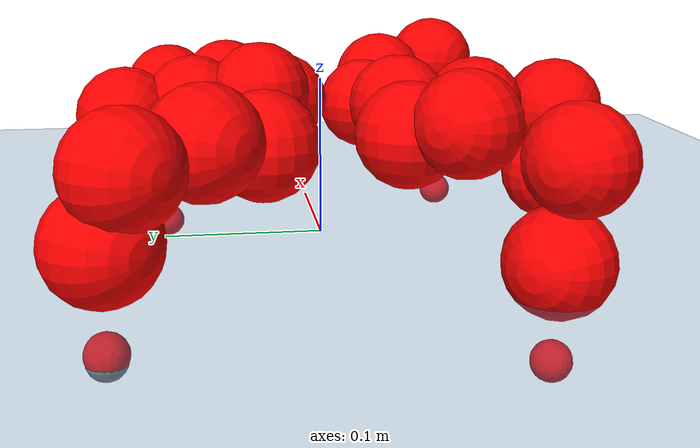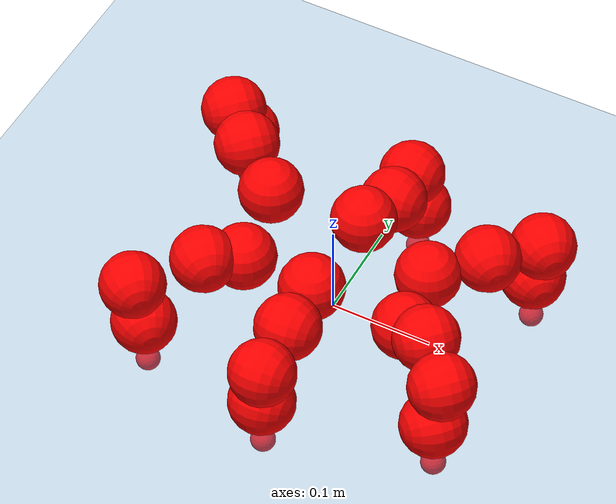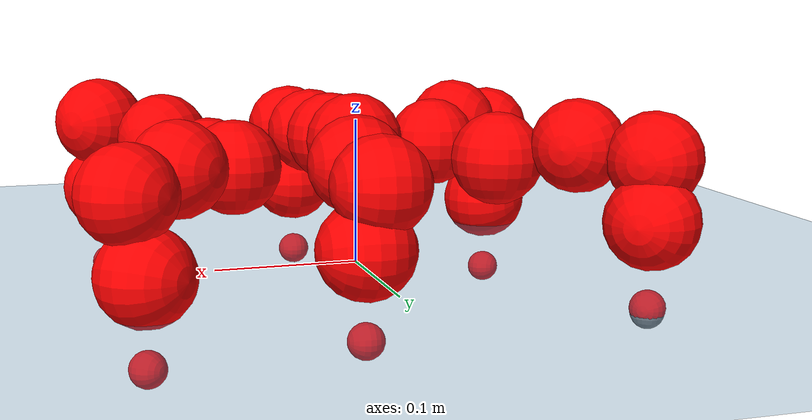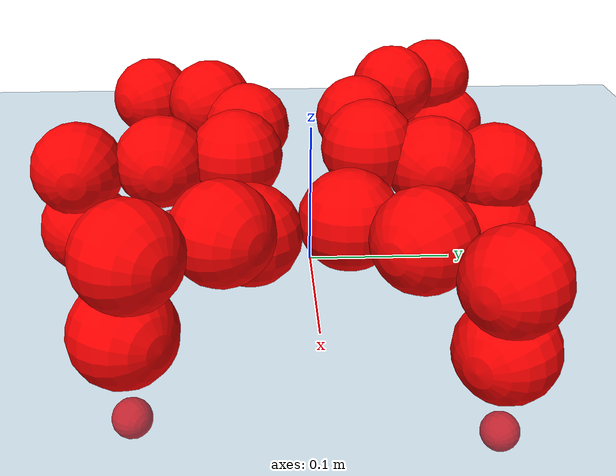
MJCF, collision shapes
<mujoco model="Golem">
  <compiler angle="radian" assetdir="assets" balanceinertia="true" inertiafromgeom="false"/>

  <option timestep="0.005" density="1.2" viscosity="2e-05"/>

  <size nkey="1"/>

  <visual>
    <quality shadowsize="8192"/>
    <map shadowclip="0.5"/>
  </visual>

  <default>
    <default class="/">
      <joint armature="0.01" damping="0.01" frictionloss="0.01"/>
      <geom contype="0" conaffinity="0" group="1" solref="-1000 -80"/>
      <site size="0.01 0.005 0.005" group="5"/>
      <general forcelimited="true" biastype="affine" gainprm="25" biasprm="0 -25 -0.5"/>
      <default class="visual">
        <geom type="mesh" group="2"/>
      </default>
      <default class="collision">
        <geom group="3"/>
      </default>
      <default class="foot">
        <geom size="0.01 0 0" condim="6" group="4" priority="1" solimp="0.015 1 0.01"/>
      </default>
      <default class="reward_collision_sphere">
        <geom group="5" rgba="1 0 0 1"/>
      </default>
    </default>
  </default>

  <asset>
    <texture type="skybox" colorspace="auto" name="//unnamed_texture_0" builtin="gradient" rgb1="0.95 0.95 0.95" rgb2="0.95 0.95 0.95" width="100" height="600"/>
    <texture type="2d" colorspace="auto" name="texplane" builtin="checker" rgb1="0.345 0.575 0.748" rgb2="0.345 0.575 0.748" markrgb="1 1 1" width="512" height="512"/>
    <material name="MatPlane" class="/" texture="texplane" texuniform="true" texrepeat="2 2" specular="0.9"/>
    <mesh name="body" class="/" file="body.stl" scale="0.001 0.001 0.001"/>
    <mesh name="coxa" class="/" file="coxa.stl" scale="0.001 0.001 0.001"/>
    <mesh name="femur" class="/" file="femur.stl" scale="0.001 0.001 0.001"/>
    <mesh name="tibia" class="/" file="tibia.stl" scale="0.001 0.001 0.001"/>
    <mesh name="tarsus" class="/" file="tarsus.stl" scale="0.001 0.001 0.001"/>
  </asset>

  <worldbody>
    <geom name="floor" class="/" size="100 100 0.125" type="plane" group="0" material="MatPlane"/>
    <light name="toplight_shadow" class="/" pos="0 0 5" dir="0.0990148 0.0990148 -0.990148" type="directional" ambient="0.04 0.04 0.04" diffuse="0.55 0.55 0.55" specular="0.12 0.12 0.12"/>
    <light name="toplight_fill" class="/" pos="0 0 5" dir="0.0990148 0.0990148 -0.990148" type="directional" castshadow="false" ambient="0.04 0.04 0.04" diffuse="0.3 0.3 0.3" specular="0.08 0.08 0.08"/>
    <body name="trunk" pos="0.00127167 -0.00127621 -0.00389268" quat="0.999973 0.00674126 -0.00144905 0.0026467">
      <inertial pos="-0.00468918 -0.00108569 -0.00525786" quat="0.999993 0.00103529 -0.000405253 -0.00358535" mass="1.48395" diaginertia="0.000378323 0.000453217 0.0367147"/>
      <joint name="//unnamed_joint_0" type="free"/>
      <geom name="//unnamed_geom_1" class="/" pos="0 0 0.084113" quat="1 0 0 0" type="mesh" rgba="0.9 0.9 0.9 1" mesh="body"/>
      <site name="imu" class="/" pos="-0.00110345 0.0423871 0.136382" size="0.00789111"/>
      <camera name="track" class="/" pos="0 -1.0552 0" quat="0.707107 0.707107 0 0" mode="trackcom"/>
      <camera name="ego_camera" class="/" pos="0.0683106 0 0.131427" quat="-0.5 -0.5 0.5 0.5"/>
      <body name="coxa_RR" pos="-0.0829505 -0.0518332 0.0809857" quat="0.387853 0.00172034 0.00434437 -0.921709">
        <inertial pos="0.00147491 -0.00141635 -0.0108199" quat="0.998906 0.00683136 0.0446717 0.0119858" mass="0.0880004" diaginertia="0.000338664 0.000353587 0.033627"/>
        <joint name="coxa_joint_RR" class="/" pos="0 0 0" axis="0.0021776 -0.008451 -0.999962" range="-2.91787 3.40084" armature="0.00808199" damping="0" frictionloss="0.00448421"/>
        <geom name="//unnamed_geom_2" class="/" type="mesh" rgba="0.2 0.2 0.2 1" mesh="coxa"/>
        <geom name="//unnamed_geom_3" class="reward_collision_sphere" size="0.0315644" pos="-0.015764 0 0"/>
        <body name="femur_RR" pos="0.0226409 0.000382926 0.0111678" quat="0.500993 -0.49979 0.500131 0.499084">
          <inertial pos="0.00171183 -0.000899863 0.00351983" quat="0.999992 0.00406984 -0.000574463 8.02469e-05" mass="0.0994418" diaginertia="0.000370329 0.000374537 0.0422965"/>
          <joint name="femur_joint_RR" class="/" pos="0 0 0" axis="0.0173021 -0.031341 -0.999359" range="-3.39956 3.13656" armature="0.0125579" damping="0.042955" frictionloss="0.00982845"/>
          <geom name="//unnamed_geom_4" class="/" type="mesh" rgba="0.9 0.9 0.9 1" mesh="femur"/>
          <geom name="//unnamed_geom_5" class="reward_collision_sphere" size="0.0315644"/>
          <body name="tibia_RR" pos="0.0105264 -0.0679702 0.000214894" quat="0.00226245 0.999987 0.00458968 0.00044454">
            <inertial pos="-0.0115244 -0.00824836 -0.00142505" quat="0.999989 0.00116514 -0.00304466 -0.00345713" mass="0.0841142" diaginertia="0.000425724 0.00040167 0.0449541"/>
            <joint name="tibia_joint_RR" class="/" pos="0 0 0" axis="0.00710849 0.066524 0.99776" range="-3.40836 3.13314" armature="0.0118813" damping="0.0512225" frictionloss="0.0088675"/>
            <geom name="//unnamed_geom_6" class="/" type="mesh" rgba="0.2 0.2 0.2 1" mesh="tibia"/>
            <geom name="//unnamed_geom_7" class="reward_collision_sphere" size="0.0315644"/>
            <body name="tarsus_RR" pos="0.0571189 -0.0069801 0.00152736" quat="0.999996 0.000845818 -0.00250839 -0.00119899">
              <inertial pos="0.0321522 0.00261254 -0.00176801" quat="0.500299 0.500853 0.499025 0.499821" mass="0.0893788" diaginertia="0.00032674 0.000405951 0.0313423"/>
              <joint name="tarsus_joint_RR" class="/" pos="0 0 0" axis="0.049372 -0.0309314 0.998301" range="-2.99629 3.18639" armature="0.00910683" damping="0" frictionloss="0.00673377"/>
              <geom name="//unnamed_geom_8" class="/" type="mesh" rgba="0.9 0.9 0.9 1" mesh="tarsus"/>
              <geom name="foot_1" class="foot" size="0.00633351" pos="0.0588522 0 0" quat="0 -0.707107 0 0.707107"/>
              <geom name="//unnamed_geom_10" class="reward_collision_sphere" size="0.0315644"/>
              <geom name="//unnamed_geom_11" class="reward_collision_sphere" size="0.0118367" pos="0.0564876 0 0"/>
              <site name="foot_1" class="foot" pos="0.0588522 0 0" quat="0 -0.707107 0 0.707107" size="0.00789111"/>
            </body>
          </body>
        </body>
      </body>
      <body name="coxa_RM" pos="0.00358748 -0.0643064 0.0868553" quat="0.71069 -0.00386448 0.00143999 -0.703493">
        <inertial pos="-0.00712299 0.0122976 -0.0052657" quat="0.999989 0.00246094 0.00312379 0.0025862" mass="0.119715" diaginertia="0.000494949 0.000432912 0.0412277"/>
        <joint name="coxa_joint_RM" class="/" pos="0 0 0" axis="-0.0508154 -0.0332488 -0.998154" stiffness="0.00670152" range="-3.16211 2.90824" armature="0.00278993" damping="0.0260905" frictionloss="0.0118683"/>
        <geom name="//unnamed_geom_12" class="/" type="mesh" rgba="0.2 0.2 0.2 1" mesh="coxa"/>
        <geom name="//unnamed_geom_13" class="reward_collision_sphere" size="0.0315644" pos="-0.015764 0 0"/>
        <body name="femur_RM" pos="0.0351012 0.00189568 -0.00170033" quat="0.499813 -0.499947 0.500038 0.500202">
          <inertial pos="-0.00916837 -0.00416408 -0.00166941" quat="0.999814 0.00022199 -0.0190835 0.00269398" mass="0.0781522" diaginertia="0.000408334 0.000384243 0.0369039"/>
          <joint name="femur_joint_RM" class="/" pos="0 0 0" axis="0.0122691 0.0241374 -0.999633" stiffness="0.00252704" range="-2.98973 3.13629" armature="0.00877385" damping="0" frictionloss="0.00409324"/>
          <geom name="//unnamed_geom_14" class="/" type="mesh" rgba="0.9 0.9 0.9 1" mesh="femur"/>
          <geom name="//unnamed_geom_15" class="reward_collision_sphere" size="0.0315644"/>
          <body name="tibia_RM" pos="0.0020736 -0.0554709 0.00297751" quat="-0.000419164 1 -0.000805491 -0.000350225">
            <inertial pos="-0.00606522 0.00161726 0.0124935" quat="0.998223 -0.0351 -0.0021393 0.0481134" mass="0.0991824" diaginertia="0.000337323 0.000407752 0.0336213"/>
            <joint name="tibia_joint_RM" class="/" pos="0 0 0" axis="0.000428323 -0.0079313 0.999968" range="-3.20019 3.26948" armature="0.00340588" damping="0" frictionloss="0.00224686"/>
            <geom name="//unnamed_geom_16" class="/" type="mesh" rgba="0.2 0.2 0.2 1" mesh="tibia"/>
            <geom name="//unnamed_geom_17" class="reward_collision_sphere" size="0.0315644"/>
            <body name="tarsus_RM" pos="0.0442738 -0.00161692 0.00216477" quat="1 0.000203026 -8.70919e-05 -0.000378592">
              <inertial pos="0.0217057 0.00158301 0.00213501" quat="0.536122 0.505627 0.473259 0.482638" mass="0.094756" diaginertia="0.000365496 0.000377119 0.0439989"/>
              <joint name="tarsus_joint_RM" class="/" pos="0 0 0" axis="-0.000685745 0.000844238 0.999999" range="-3.40935 2.98883" armature="0.00229766" damping="0.00142014" frictionloss="0.00775152"/>
              <geom name="//unnamed_geom_18" class="/" type="mesh" rgba="0.9 0.9 0.9 1" mesh="tarsus"/>
              <geom name="foot_2" class="foot" size="0.00401015" pos="0.0588522 0 0" quat="0 -0.707107 0 0.707107"/>
              <geom name="//unnamed_geom_20" class="reward_collision_sphere" size="0.0315644"/>
              <geom name="//unnamed_geom_21" class="reward_collision_sphere" size="0.0118367" pos="0.0564876 0 0"/>
              <site name="foot_2" class="foot" pos="0.0588522 0 0" quat="0 -0.707107 0 0.707107" size="0.00789111"/>
            </body>
          </body>
        </body>
      </body>
      <body name="coxa_RF" pos="0.105598 -0.0516219 0.0723415" quat="0.923878 -0.000212348 2.00288e-05 -0.382687">
        <inertial pos="0.0104478 0.0150083 -0.00926943" quat="0.998726 0.006719 -0.0238613 -0.0439438" mass="0.105726" diaginertia="0.000356091 0.000398314 0.0396206"/>
        <joint name="coxa_joint_RF" class="/" pos="0 0 0" axis="0.0057677 -0.00731916 -0.999957" stiffness="0.00170732" range="-3.0073 2.87604" armature="0.0113524" damping="0" frictionloss="0.00864435"/>
        <geom name="//unnamed_geom_22" class="/" type="mesh" rgba="0.2 0.2 0.2 1" mesh="coxa"/>
        <geom name="//unnamed_geom_23" class="reward_collision_sphere" size="0.0315644" pos="-0.015764 0 0"/>
        <body name="femur_RF" pos="0.0164686 0.00912906 0.0158962" quat="0.497452 -0.502005 0.496393 0.504109">
          <inertial pos="-0.00194542 0.0102614 -0.0129231" quat="0.997712 -0.0666174 -0.0103319 0.0050306" mass="0.101984" diaginertia="0.000440696 0.00047303 0.0404252"/>
          <joint name="femur_joint_RF" class="/" pos="0 0 0" axis="0.00354815 0.0272424 -0.999623" range="-3.33515 3.13489" armature="0.0061313" damping="0.0437575" frictionloss="0.0129741"/>
          <geom name="//unnamed_geom_24" class="/" type="mesh" rgba="0.9 0.9 0.9 1" mesh="femur"/>
          <geom name="//unnamed_geom_25" class="reward_collision_sphere" size="0.0315644"/>
          <body name="tibia_RF" pos="-0.00810624 -0.0619127 -0.007167" quat="0.00249428 0.999987 -0.00438574 0.00090694">
            <inertial pos="-0.00101177 -0.00806094 0.00581587" quat="0.998844 -0.0038852 -0.0342892 0.0334687" mass="0.0957186" diaginertia="0.000389135 0.000426635 0.0432016"/>
            <joint name="tibia_joint_RF" class="/" pos="0 0 0" axis="0.0570153 0.0225718 0.998118" range="-3.0696 3.12121" armature="0.0103648" damping="0.00495288" frictionloss="0.00804427"/>
            <geom name="//unnamed_geom_26" class="/" type="mesh" rgba="0.2 0.2 0.2 1" mesh="tibia"/>
            <geom name="//unnamed_geom_27" class="reward_collision_sphere" size="0.0315644"/>
            <body name="tarsus_RF" pos="0.0494318 0.000922841 0.00787616" quat="0.99998 -0.00232536 0.00428117 -0.004145">
              <inertial pos="0.0442323 -0.000596298 -0.0146671" quat="0.466348 0.505951 0.487617 0.537366" mass="0.126408" diaginertia="0.000391465 0.000490603 0.0454264"/>
              <joint name="tarsus_joint_RF" class="/" pos="0 0 0" axis="0.0217968 -0.0637637 0.997727" stiffness="0.00107341" range="-3.41108 3.058" armature="0.00775463" damping="0" frictionloss="0.00410907"/>
              <geom name="//unnamed_geom_28" class="/" type="mesh" rgba="0.9 0.9 0.9 1" mesh="tarsus"/>
              <geom name="foot_3" class="foot" size="0.00648036" pos="0.0588522 0 0" quat="0 -0.707107 0 0.707107"/>
              <geom name="//unnamed_geom_30" class="reward_collision_sphere" size="0.0315644"/>
              <geom name="//unnamed_geom_31" class="reward_collision_sphere" size="0.0118367" pos="0.0564876 0 0"/>
              <site name="foot_3" class="foot" pos="0.0588522 0 0" quat="0 -0.707107 0 0.707107" size="0.00789111"/>
            </body>
          </body>
        </body>
      </body>
      <body name="coxa_LR" pos="-0.100068 0.0552498 0.0792221" quat="0.381612 -0.00326023 0.00562779 0.9243">
        <inertial pos="-0.0124605 0.00104471 0.00893896" quat="0.998542 -0.00525249 -0.0361252 0.0397672" mass="0.0954258" diaginertia="0.000377882 0.000399166 0.0382795"/>
        <joint name="coxa_joint_LR" class="/" pos="0 0 0" axis="0.0656802 -0.011834 -0.997771" stiffness="0.0111262" range="-3.07251 3.11416" armature="0.0105577" damping="0.0429507" frictionloss="0.00764828"/>
        <geom name="//unnamed_geom_32" class="/" type="mesh" rgba="0.2 0.2 0.2 1" mesh="coxa"/>
        <geom name="//unnamed_geom_33" class="reward_collision_sphere" size="0.0315644" pos="-0.015764 0 0"/>
        <body name="femur_LR" pos="0.0387382 0.00722907 0.0114498" quat="0.496958 -0.501854 0.504187 0.496962">
          <inertial pos="-0.005636 0.00192228 0.000925898" quat="0.999996 0.0025406 -0.00113311 -0.000943561" mass="0.102723" diaginertia="0.000406375 0.000408201 0.0362239"/>
          <joint name="femur_joint_LR" class="/" pos="0 0 0" axis="0.00102858 0.001162 0.999999" range="-3.28567 2.84122" armature="0.00770244" damping="0" frictionloss="0.0022219"/>
          <geom name="//unnamed_geom_34" class="/" type="mesh" rgba="0.9 0.9 0.9 1" mesh="femur"/>
          <geom name="//unnamed_geom_35" class="reward_collision_sphere" size="0.0315644"/>
          <body name="tibia_LR" pos="0.00476819 -0.0526801 -0.0022206" quat="-0.000691557 1 0.000296483 0.000567562">
            <inertial pos="-0.00441768 0.00320412 -0.00271004" quat="0.999771 -0.0211856 -0.00163457 -0.00239414" mass="0.111932" diaginertia="0.000413073 0.000370835 0.0405505"/>
            <joint name="tibia_joint_LR" class="/" pos="0 0 0" axis="0.00471853 0.0160865 -0.999859" stiffness="0.0179092" range="-3.2314 3.38535" armature="0.0136378" damping="0" frictionloss="0.0109571"/>
            <geom name="//unnamed_geom_36" class="/" type="mesh" rgba="0.2 0.2 0.2 1" mesh="tibia"/>
            <geom name="//unnamed_geom_37" class="reward_collision_sphere" size="0.0315644"/>
            <body name="tarsus_LR" pos="0.038684 0.00374693 0.0127792" quat="0.999998 -0.000579629 0.00168013 -0.0011706">
              <inertial pos="0.0315602 0.00595065 0.000761026" quat="0.500051 0.49991 0.499961 0.500079" mass="0.0955242" diaginertia="0.0003801 0.000420959 0.0377117"/>
              <joint name="tarsus_joint_LR" class="/" pos="0 0 0" axis="0.0182768 -0.00933717 -0.999789" stiffness="0.0348039" range="-3.40104 3.10961" armature="0.00747684" damping="0.0784363" frictionloss="0.00700578"/>
              <geom name="//unnamed_geom_38" class="/" type="mesh" rgba="0.9 0.9 0.9 1" mesh="tarsus"/>
              <geom name="foot_4" class="foot" size="0.0112553" pos="0.0588522 0 0" quat="0.707107 0 -0.707107 0"/>
              <geom name="//unnamed_geom_40" class="reward_collision_sphere" size="0.0315644"/>
              <geom name="//unnamed_geom_41" class="reward_collision_sphere" size="0.0118367" pos="0.0564876 0 0"/>
              <site name="foot_4" class="foot" pos="0.0588522 0 0" quat="0.707107 0 -0.707107 0" size="0.00789111"/>
            </body>
          </body>
        </body>
      </body>
      <body name="coxa_LM" pos="0.0113592 0.0557102 0.0942795" quat="0.71168 0.0011907 -0.00344806 0.702495">
        <inertial pos="0.00642964 3.23118e-05 -0.00866166" quat="0.99997 0.00531032 -0.000366466 -0.00565157" mass="0.0853014" diaginertia="0.000267653 0.000331169 0.0291441"/>
        <joint name="coxa_joint_LM" class="/" pos="0 0 0" axis="-0.00207066 -0.00190016 -0.999996" range="-2.9114 3.20277" armature="0.0121798" damping="0" frictionloss="0.00356432"/>
        <geom name="//unnamed_geom_42" class="/" type="mesh" rgba="0.2 0.2 0.2 1" mesh="coxa"/>
        <geom name="//unnamed_geom_43" class="reward_collision_sphere" size="0.0315644" pos="-0.015764 0 0"/>
        <body name="femur_LM" pos="0.0261152 -0.00956632 -0.00959121" quat="0.499804 -0.500282 0.499886 0.500028">
          <inertial pos="-0.000456536 0.00996957 -0.00140317" quat="0.999078 -0.00138986 -0.0424224 0.00650179" mass="0.130129" diaginertia="0.00049842 0.000481364 0.0460095"/>
          <joint name="femur_joint_LM" class="/" pos="0 0 0" axis="-0.00489344 0.033789 0.999417" range="-3.21696 3.16264" armature="0.0111954" damping="0" frictionloss="0.00430908"/>
          <geom name="//unnamed_geom_44" class="/" type="mesh" rgba="0.9 0.9 0.9 1" mesh="femur"/>
          <geom name="//unnamed_geom_45" class="reward_collision_sphere" size="0.0315644"/>
          <body name="tibia_LM" pos="0.00725111 -0.0430199 0.00273" quat="0.000761551 0.999999 9.53005e-05 -0.000827233">
            <inertial pos="0.0136563 -0.0149894 -0.00154792" quat="0.999998 -0.000350364 -0.00153091 0.00121614" mass="0.0814579" diaginertia="0.000439602 0.000394213 0.0370723"/>
            <joint name="tibia_joint_LM" class="/" pos="0 0 0" axis="-0.00216627 -6.14625e-05 -0.999998" range="-3.34525 3.12386" armature="0.00750885" damping="0" frictionloss="0.0111242"/>
            <geom name="//unnamed_geom_46" class="/" type="mesh" rgba="0.2 0.2 0.2 1" mesh="tibia"/>
            <geom name="//unnamed_geom_47" class="reward_collision_sphere" size="0.0315644"/>
            <body name="tarsus_LM" pos="0.0397732 -0.00279146 0.00817216" quat="1 -0.000143252 8.65737e-05 -4.06897e-05">
              <inertial pos="0.0374791 0.00301318 -0.00101179" quat="0.497847 0.506757 0.497049 0.498284" mass="0.105863" diaginertia="0.000381589 0.00039453 0.0325874"/>
              <joint name="tarsus_joint_LM" class="/" pos="0 0 0" axis="-0.0297934 0.0476306 -0.998421" stiffness="0.0137574" range="-3.23121 3.34142" armature="0.00810455" damping="0" frictionloss="0.0123423"/>
              <geom name="//unnamed_geom_48" class="/" type="mesh" rgba="0.9 0.9 0.9 1" mesh="tarsus"/>
              <geom name="foot_5" class="foot" size="0.00726942" pos="0.0588522 0 0" quat="0.707107 0 -0.707107 0"/>
              <geom name="//unnamed_geom_50" class="reward_collision_sphere" size="0.0315644"/>
              <geom name="//unnamed_geom_51" class="reward_collision_sphere" size="0.0118367" pos="0.0564876 0 0"/>
              <site name="foot_5" class="foot" pos="0.0588522 0 0" quat="0.707107 0 -0.707107 0" size="0.00789111"/>
            </body>
          </body>
        </body>
      </body>
      <body name="coxa_LF" pos="0.0989994 0.0308557 0.0771872" quat="0.923144 0.000495846 -0.003089 0.384441">
        <inertial pos="0.00174198 0.0100978 0.00251526" quat="0.999807 -0.00697974 -0.00185561 0.018264" mass="0.111939" diaginertia="0.000448002 0.000532458 0.0437531"/>
        <joint name="coxa_joint_LF" class="/" pos="0 0 0" axis="-0.0105485 0.0226361 -0.999688" stiffness="0.0155819" range="-2.94626 3.25082" armature="0.00808597" damping="0.0365031" frictionloss="0.00486357"/>
        <geom name="//unnamed_geom_52" class="/" type="mesh" rgba="0.2 0.2 0.2 1" mesh="coxa"/>
        <geom name="//unnamed_geom_53" class="reward_collision_sphere" size="0.0315644" pos="-0.015764 0 0"/>
        <body name="femur_LF" pos="0.0409873 -0.00355111 0.005432" quat="0.503808 -0.498555 0.499274 0.498343">
          <inertial pos="-0.00201463 -0.00149576 0.00174827" quat="0.997358 0.0105198 -0.0367386 -0.0617714" mass="0.0968879" diaginertia="0.000419757 0.000469148 0.042972"/>
          <joint name="femur_joint_LF" class="/" pos="0 0 0" axis="-0.0135642 -0.0382433 0.999176" stiffness="0.00148792" range="-3.14468 3.27862" armature="0.00827372" damping="0" frictionloss="0.0137951"/>
          <geom name="//unnamed_geom_54" class="/" type="mesh" rgba="0.9 0.9 0.9 1" mesh="femur"/>
          <geom name="//unnamed_geom_55" class="reward_collision_sphere" size="0.0315644"/>
          <body name="tibia_LF" pos="0.00811941 -0.0561317 0.00447853" quat="4.0225e-05 1 0.0001561 -4.34505e-07">
            <inertial pos="-0.00334149 0.00213265 0.000722398" quat="0.999298 -0.0355262 0.0118635 0.00031218" mass="0.0873352" diaginertia="0.000426595 0.000449386 0.0432399"/>
            <joint name="tibia_joint_LF" class="/" pos="0 0 0" axis="0.00576558 -0.0388916 -0.999227" range="-2.85544 3.13057" armature="0.00446053" damping="0" frictionloss="0.0116278"/>
            <geom name="//unnamed_geom_56" class="/" type="mesh" rgba="0.2 0.2 0.2 1" mesh="tibia"/>
            <geom name="//unnamed_geom_57" class="reward_collision_sphere" size="0.0315644"/>
            <body name="tarsus_LF" pos="0.0494151 -0.00587236 -0.00758226" quat="1 -6.06977e-05 -2.20066e-06 -5.58652e-06">
              <inertial pos="0.0381342 0.000647631 -0.0139549" quat="0.499188 0.504464 0.500616 0.495692" mass="0.109679" diaginertia="0.000404113 0.00043789 0.0413791"/>
              <joint name="tarsus_joint_LF" class="/" pos="0 0 0" axis="-0.0133455 0.0504927 -0.998635" range="-3.16168 2.96869" armature="0.00818288" damping="0.0757211" frictionloss="0.00711147"/>
              <geom name="//unnamed_geom_58" class="/" type="mesh" rgba="0.9 0.9 0.9 1" mesh="tarsus"/>
              <geom name="foot_6" class="foot" size="0.00780004" pos="0.0588522 0 0" quat="0.707107 0 -0.707107 0"/>
              <geom name="//unnamed_geom_60" class="reward_collision_sphere" size="0.0315644"/>
              <geom name="//unnamed_geom_61" class="reward_collision_sphere" size="0.0118367" pos="0.0564876 0 0"/>
              <site name="foot_6" class="foot" pos="0.0588522 0 0" quat="0.707107 0 -0.707107 0" size="0.00789111"/>
            </body>
          </body>
        </body>
      </body>
    </body>
  </worldbody>

  <contact>
    <pair class="/" geom1="floor" geom2="foot_1" name="//unnamed_contact_0"/>
    <pair class="/" geom1="floor" geom2="foot_2" name="//unnamed_contact_1"/>
    <pair class="/" geom1="floor" geom2="foot_3" name="//unnamed_contact_2"/>
    <pair class="/" geom1="floor" geom2="foot_4" name="//unnamed_contact_3"/>
    <pair class="/" geom1="floor" geom2="foot_5" name="//unnamed_contact_4"/>
    <pair class="/" geom1="floor" geom2="foot_6" name="//unnamed_contact_5"/>
  </contact>

  <actuator>
    <general name="coxa_joint_RR" class="/" joint="coxa_joint_RR" forcerange="-3.57532 3.57532" gainprm="26.7304" biasprm="0 -26.7304 -0.529466"/>
    <general name="femur_joint_RR" class="/" joint="femur_joint_RR" forcerange="-4.34567 4.34567" gainprm="26.7304" biasprm="0 -26.7304 -0.529466"/>
    <general name="tibia_joint_RR" class="/" joint="tibia_joint_RR" forcerange="-6.60471 6.60471" gainprm="26.7304" biasprm="0 -26.7304 -0.529466"/>
    <general name="tarsus_joint_RR" class="/" joint="tarsus_joint_RR" forcerange="-5.10422 5.10422" gainprm="26.7304" biasprm="0 -26.7304 -0.529466"/>
    <general name="coxa_joint_RM" class="/" joint="coxa_joint_RM" forcerange="-3.53841 3.53841" gainprm="26.7304" biasprm="0 -26.7304 -0.529466"/>
    <general name="femur_joint_RM" class="/" joint="femur_joint_RM" forcerange="-3.26198 3.26198" gainprm="26.7304" biasprm="0 -26.7304 -0.529466"/>
    <general name="tibia_joint_RM" class="/" joint="tibia_joint_RM" forcerange="-7.22823 7.22823" gainprm="26.7304" biasprm="0 -26.7304 -0.529466"/>
    <general name="tarsus_joint_RM" class="/" joint="tarsus_joint_RM" forcerange="-2.6843 2.6843" gainprm="26.7304" biasprm="0 -26.7304 -0.529466"/>
    <general name="coxa_joint_RF" class="/" joint="coxa_joint_RF" forcerange="-2.99954 2.99954" gainprm="26.7304" biasprm="0 -26.7304 -0.529466"/>
    <general name="femur_joint_RF" class="/" joint="femur_joint_RF" forcerange="-8.53754 8.53754" gainprm="26.7304" biasprm="0 -26.7304 -0.529466"/>
    <general name="tibia_joint_RF" class="/" joint="tibia_joint_RF" forcerange="-7.13272 7.13272" gainprm="26.7304" biasprm="0 -26.7304 -0.529466"/>
    <general name="tarsus_joint_RF" class="/" joint="tarsus_joint_RF" forcerange="-5.66534 5.66534" gainprm="26.7304" biasprm="0 -26.7304 -0.529466"/>
    <general name="coxa_joint_LR" class="/" joint="coxa_joint_LR" forcerange="-4.17017 4.17017" gainprm="26.7304" biasprm="0 -26.7304 -0.529466"/>
    <general name="femur_joint_LR" class="/" joint="femur_joint_LR" forcerange="-7.86282 7.86282" gainprm="26.7304" biasprm="0 -26.7304 -0.529466"/>
    <general name="tibia_joint_LR" class="/" joint="tibia_joint_LR" forcerange="-7.17971 7.17971" gainprm="26.7304" biasprm="0 -26.7304 -0.529466"/>
    <general name="tarsus_joint_LR" class="/" joint="tarsus_joint_LR" forcerange="-6.17073 6.17073" gainprm="26.7304" biasprm="0 -26.7304 -0.529466"/>
    <general name="coxa_joint_LM" class="/" joint="coxa_joint_LM" forcerange="-5.66645 5.66645" gainprm="26.7304" biasprm="0 -26.7304 -0.529466"/>
    <general name="femur_joint_LM" class="/" joint="femur_joint_LM" forcerange="-5.73115 5.73115" gainprm="26.7304" biasprm="0 -26.7304 -0.529466"/>
    <general name="tibia_joint_LM" class="/" joint="tibia_joint_LM" forcerange="-8.81696 8.81696" gainprm="26.7304" biasprm="0 -26.7304 -0.529466"/>
    <general name="tarsus_joint_LM" class="/" joint="tarsus_joint_LM" forcerange="-5.75985 5.75985" gainprm="26.7304" biasprm="0 -26.7304 -0.529466"/>
    <general name="coxa_joint_LF" class="/" joint="coxa_joint_LF" forcerange="-3.23815 3.23815" gainprm="26.7304" biasprm="0 -26.7304 -0.529466"/>
    <general name="femur_joint_LF" class="/" joint="femur_joint_LF" forcerange="-3.15857 3.15857" gainprm="26.7304" biasprm="0 -26.7304 -0.529466"/>
    <general name="tibia_joint_LF" class="/" joint="tibia_joint_LF" forcerange="-5.61116 5.61116" gainprm="26.7304" biasprm="0 -26.7304 -0.529466"/>
    <general name="tarsus_joint_LF" class="/" joint="tarsus_joint_LF" forcerange="-6.71009 6.71009" gainprm="26.7304" biasprm="0 -26.7304 -0.529466"/>
  </actuator>

  <sensor>
    <gyro site="imu" name="imu_angular_velocity"/>
    <velocimeter site="imu" name="imu_linear_velocity"/>
    <framelinvel objtype="site" objname="foot_1" name="foot_1_global_linear_velocity"/>
    <framelinvel objtype="site" objname="foot_2" name="foot_2_global_linear_velocity"/>
    <framelinvel objtype="site" objname="foot_3" name="foot_3_global_linear_velocity"/>
    <framelinvel objtype="site" objname="foot_4" name="foot_4_global_linear_velocity"/>
    <framelinvel objtype="site" objname="foot_5" name="foot_5_global_linear_velocity"/>
    <framelinvel objtype="site" objname="foot_6" name="foot_6_global_linear_velocity"/>
  </sensor>

  <keyframe>
    <key name="home" qpos="0 0 0.1457 1 0 0 0 0 0 0 0 0 0 0 0 0 0 0 0 0 0 0 0 0 0 0 0 0 0 0 0"/>
  </keyframe>
</mujoco>
